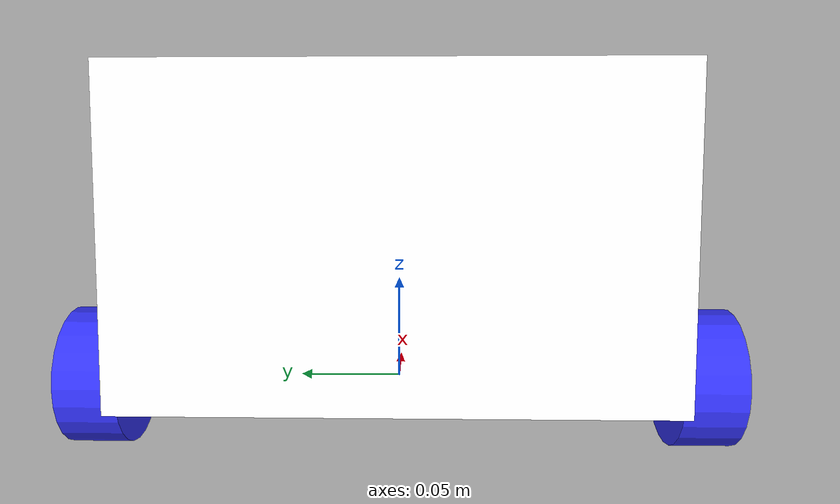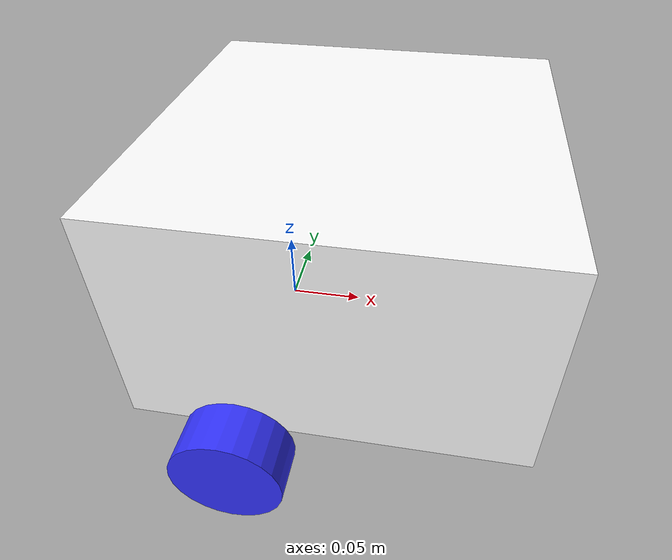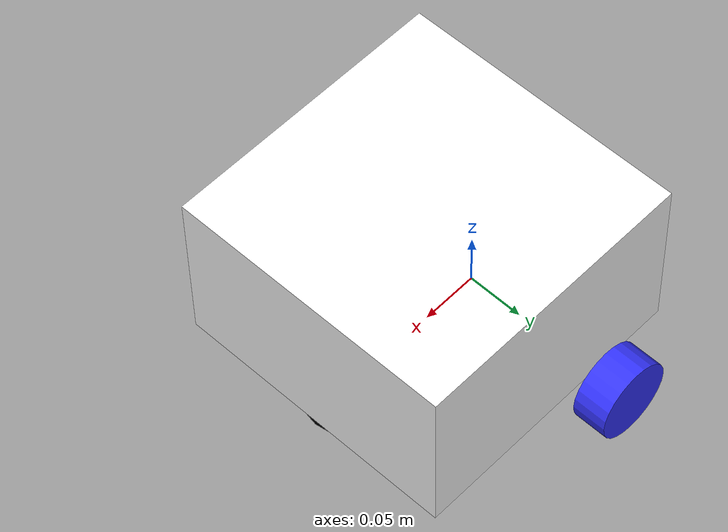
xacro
<?xml version="1.0"?>
<robot xmlns:xacro="http://www.ros.org/wiki/xacro">

    <xacro:include filename="inertial_macros.xacro"/>

    <!-- Define Colors -->
    <material name="white">
        <color rgba="1 1 1 1"/>
    </material>

    <material name="orange">
        <color rgba="1 0.25 0.1 1"/>
    </material>

    <material name="blue">
        <color rgba="0.2 0.2 1 1"/>
    </material>

    <material name="black">
        <color rgba="0 0 0 1"/>
    </material>

    <!-- Base Footprint -->
    <link name="base_footprint"/>

    <joint name="base_footprint_joint" type="fixed">
        <parent link="base_footprint"/>
        <child link="base_link"/>
        <origin xyz="0 0 0" rpy="0 0 0"/>
    </joint>

    <!-- Base Link -->
    <link name="base_link"/>

    <!-- Chassis -->
    <joint name="chassis_joint" type="fixed">
        <parent link="base_link"/>
        <child link="chassis"/>
        <origin xyz="-0.1 0 0"/>
    </joint>

    <link name="chassis">
        <visual>
            <origin xyz="0.15 0 0.075" rpy="0 0 0"/>
            <geometry>
                <box size="0.25 0.25 0.15"/>
            </geometry>
            <material name="white"/>
        </visual>
        <collision>
            <origin xyz="0.15 0 0.075" rpy="0 0 0"/>
            <geometry>
                <box size="0.25 0.25 0.15"/>
            </geometry>
        </collision>
        <xacro:inertial_box mass="1.0" x="0.25" y="0.25" z="0.15" origin_xyz="0.1 0 -0.05" origin_rpy="0 0 0"/>
    </link>

    <gazebo reference="chassis">
        <material>Gazebo/White</material>
    </gazebo>

    <!-- Left Wheel -->
    <joint name="left_wheel_joint" type="continuous">
        <parent link="base_link"/>
        <child link="left_wheel"/>
        <origin xyz="0 0.15 0" rpy="-${pi/2} 0 0"/>
        <axis xyz="0 0 1"/>
    </joint>

    <link name="left_wheel">
        <visual>
            <geometry>
                <cylinder radius="0.0342" length="0.03"/>
            </geometry>
            <material name="blue"/>
        </visual>
        <collision>
            <geometry>
                <cylinder radius="0.0342" length="0.03"/>
            </geometry>
        </collision>
        <xacro:inertial_cylinder mass="0.1" length="0.03" radius="0.0342"/>
    </link>

    <gazebo reference="left_wheel">
        <material>Gazebo/Blue</material>
    </gazebo>

    <!-- Right Wheel -->
    <joint name="right_wheel_joint" type="continuous">
        <parent link="base_link"/>
        <child link="right_wheel"/>
        <origin xyz="0 -0.15 0" rpy="${pi/2} 0 0"/>
        <axis xyz="0 0 -1"/>
    </joint>

    <link name="right_wheel">
        <visual>
            <geometry>
                <cylinder radius="0.0342" length="0.03"/>
            </geometry>
            <material name="blue"/>
        </visual>
        <collision>
            <geometry>
                <cylinder radius="0.0342" length="0.03"/>
            </geometry>
        </collision>
        <xacro:inertial_cylinder mass="0.1" length="0.03" radius="0.0342"/>
    </link>

    <gazebo reference="right_wheel">
        <material>Gazebo/Blue</material>
    </gazebo>

    <!-- Caster Wheel -->
    <joint name="caster_wheel_joint" type="fixed">
        <parent link="chassis"/>
        <child link="caster_wheel"/>
        <origin xyz="0.24 0 0" rpy="0 0 0"/>
    </joint>

    <link name="caster_wheel">
        <visual>
            <geometry>
                <sphere radius="0.0342"/>
            </geometry>
            <material name="black"/>
        </visual>
        <collision>
            <geometry>
                <sphere radius="0.0342"/>
            </geometry>
        </collision>
        <xacro:inertial_sphere mass="0.1" radius="0.0342"/>
    </link>

    <gazebo reference="caster_wheel">
        <material>Gazebo/Black</material>
        <mu1 value="0.0001"/>
        <mu2 value="0.0001"/>
    </gazebo>

    <transmission name="left_wheel_joint_tran">
        <type>transmission_interface/SimpleTransmission</type>
        <joint name="left_wheel_joint">
            <hardwareInterface>hardware_interface/EffortJointInterface</hardwareInterface>
        </joint>
        <actuator name="left_wheel_joint_actr">
            <hardwareInterface>hardware_interface/EffortJointInterface</hardwareInterface>
            <mechanicalReduction>1</mechanicalReduction>
        </actuator>
    </transmission>

        <transmission name="right_wheel_joint_tran">
        <type>transmission_interface/SimpleTransmission</type>
        <joint name="right_wheel_joint">
            <hardwareInterface>hardware_interface/EffortJointInterface</hardwareInterface>
        </joint>
        <actuator name="right_wheel_joint_actr">
            <hardwareInterface>hardware_interface/EffortJointInterface</hardwareInterface>
            <mechanicalReduction>1</mechanicalReduction>
        </actuator>
    </transmission>

</robot>

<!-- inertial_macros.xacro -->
<robot xmlns:xacro="http://www.ros.org/wiki/xacro">

    <!-- Sphere Inertia Macro -->
    <xacro:macro name="inertial_sphere" params="mass radius">
        <inertial>
            <mass value="${mass}"/>
            <origin xyz="0 0 0" rpy="0 0 0"/>
            <inertia ixx="${(2/5) * mass * (radius * radius)}" ixy="0.0" ixz="0.0"
                    iyy="${(2/5) * mass * (radius * radius)}" iyz="0.0"
                    izz="${(2/5) * mass * (radius * radius)}"/>
        </inertial>
    </xacro:macro>

    <!-- Box Inertia Macro -->
    <xacro:macro name="inertial_box" params="mass x y z">
        <inertial>
            <mass value="${mass}"/>
            <origin xyz="0 0 0" rpy="0 0 0"/>
            <inertia ixx="${(1/12) * mass * (y * y + z * z)}" ixy="0.0" ixz="0.0"
                    iyy="${(1/12) * mass * (x * x + z * z)}" iyz="0.0"
                    izz="${(1/12) * mass * (x * x + y * y)}"/>
        </inertial>
    </xacro:macro>

    <!-- Cylinder Inertia Macro -->
    <xacro:macro name="inertial_cylinder" params="mass length radius">
        <inertial>
            <mass value="${mass}"/>
            <origin xyz="0 0 0" rpy="0 0 0"/>
            <inertia ixx="${(1/12) * mass * (3 * radius * radius + length * length)}" ixy="0.0" ixz="0.0"
                    iyy="${(1/12) * mass * (3 * radius * radius + length * length)}" iyz="0.0"
                    izz="${(1/2) * mass * (radius * radius)}"/>
        </inertial>
    </xacro:macro>

</robot>
